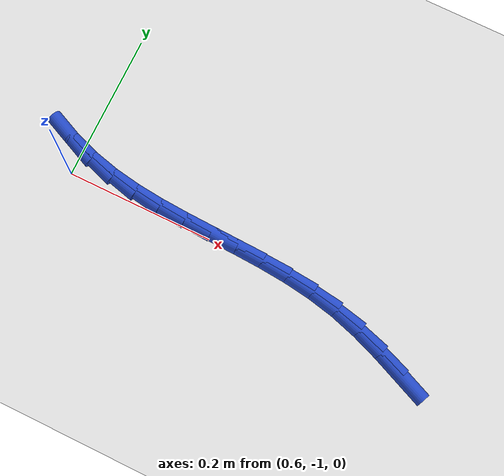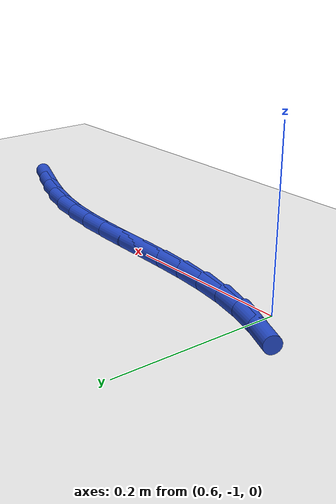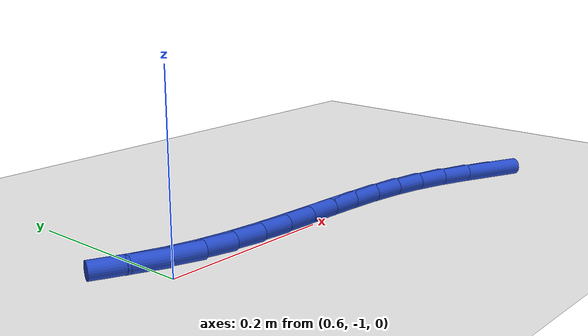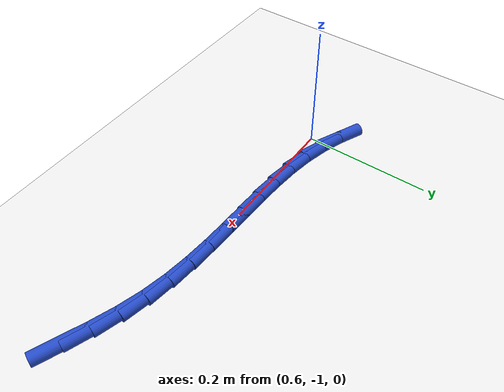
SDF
<sdf version="1.6">
 <world name="default">
  <model name="ground_plane">
   <static>1</static>
   <link name="link">
    <collision name="collision">
     <geometry><plane><normal>0 0 1</normal><size>100 100</size></plane></geometry>
     <surface><friction><ode><mu>100</mu><mu2>50</mu2></ode></friction></surface>
    </collision>
    <visual name="visual">
     <cast_shadows>0</cast_shadows>
     <geometry><plane><normal>0 0 1</normal><size>100 100</size></plane></geometry>
     <material>
      <script><uri>file://media/materials/scripts/gazebo.material</uri><name>Gazebo/WhiteGlow</name></script>
     </material>
    </visual>
   </link>
  </model>
  <model name="line">
   <link name="link_135">
    <pose>1.0943124483751947 -1.0521221810499186 0.01 0 1.57 -0.4006295641597007</pose>
    <collision name="collision">
     <geometry><cylinder><radius>0.01</radius><length>0.08</length></cylinder></geometry>
    </collision>
    <visual name="visual">
     <material>
      <script><name>Gazebo/Blue</name><uri>file://media/materials/scripts/gazebo.material</uri></script>
     </material>
     <geometry><cylinder><radius>0.01</radius><length>0.08</length></cylinder></geometry>
    </visual>
   </link>
   <link name="link_136">
    <pose>1.0587154437186466 -1.03704558525214 0.01 0 1.57 -0.3577651956688518</pose>
    <collision name="collision">
     <geometry><cylinder><radius>0.01</radius><length>0.08</length></cylinder></geometry>
    </collision>
    <visual name="visual">
     <material>
      <script><name>Gazebo/Blue</name><uri>file://media/materials/scripts/gazebo.material</uri></script>
     </material>
     <geometry><cylinder><radius>0.01</radius><length>0.08</length></cylinder></geometry>
    </visual>
   </link>
   <link name="link_137">
    <pose>1.022712836254076 -1.0235858821953256 0.01 0 1.57 -0.29202752304588614</pose>
    <collision name="collision">
     <geometry><cylinder><radius>0.01</radius><length>0.08</length></cylinder></geometry>
    </collision>
    <visual name="visual">
     <material>
      <script><name>Gazebo/Blue</name><uri>file://media/materials/scripts/gazebo.material</uri></script>
     </material>
     <geometry><cylinder><radius>0.01</radius><length>0.08</length></cylinder></geometry>
    </visual>
   </link>
   <link name="link_138">
    <pose>0.9862007171766097 -1.0126095286046126 0.01 0 1.57 -0.20892534083363928</pose>
    <collision name="collision">
     <geometry><cylinder><radius>0.01</radius><length>0.08</length></cylinder></geometry>
    </collision>
    <visual name="visual">
     <material>
      <script><name>Gazebo/Blue</name><uri>file://media/materials/scripts/gazebo.material</uri></script>
     </material>
     <geometry><cylinder><radius>0.01</radius><length>0.08</length></cylinder></geometry>
    </visual>
   </link>
   <link name="link_139">
    <pose>0.9491165771174597 -1.0047469781319385 0.01 0 1.57 -0.13666586955304452</pose>
    <collision name="collision">
     <geometry><cylinder><radius>0.01</radius><length>0.08</length></cylinder></geometry>
    </collision>
    <visual name="visual">
     <material>
      <script><name>Gazebo/Blue</name><uri>file://media/materials/scripts/gazebo.material</uri></script>
     </material>
     <geometry><cylinder><radius>0.01</radius><length>0.08</length></cylinder></geometry>
    </visual>
   </link>
   <link name="link_140">
    <pose>0.9115809946157856 -0.9995849670982213 0.01 0 1.57 -0.08345236203246512</pose>
    <collision name="collision">
     <geometry><cylinder><radius>0.01</radius><length>0.08</length></cylinder></geometry>
    </collision>
    <visual name="visual">
     <material>
      <script><name>Gazebo/Blue</name><uri>file://media/materials/scripts/gazebo.material</uri></script>
     </material>
     <geometry><cylinder><radius>0.01</radius><length>0.08</length></cylinder></geometry>
    </visual>
   </link>
   <link name="link_141">
    <pose>0.8737651448902847 -0.9964217986235205 0.01 0 1.57 -0.04916366091935475</pose>
    <collision name="collision">
     <geometry><cylinder><radius>0.01</radius><length>0.08</length></cylinder></geometry>
    </collision>
    <visual name="visual">
     <material>
      <script><name>Gazebo/Blue</name><uri>file://media/materials/scripts/gazebo.material</uri></script>
     </material>
     <geometry><cylinder><radius>0.01</radius><length>0.08</length></cylinder></geometry>
    </visual>
   </link>
   <link name="link_142">
    <pose>0.8358402048750789 -0.9945557660488891 0.01 0 1.57 -0.03354545636065951</pose>
    <collision name="collision">
     <geometry><cylinder><radius>0.01</radius><length>0.08</length></cylinder></geometry>
    </collision>
    <visual name="visual">
     <material>
      <script><name>Gazebo/Blue</name><uri>file://media/materials/scripts/gazebo.material</uri></script>
     </material>
     <geometry><cylinder><radius>0.01</radius><length>0.08</length></cylinder></geometry>
    </visual>
   </link>
   <link name="link_143">
    <pose>0.7979773515042918 -0.9932851627153789 0.01 0 1.57 -0.03657405702943518</pose>
    <collision name="collision">
     <geometry><cylinder><radius>0.01</radius><length>0.08</length></cylinder></geometry>
    </collision>
    <visual name="visual">
     <material>
      <script><name>Gazebo/Blue</name><uri>file://media/materials/scripts/gazebo.material</uri></script>
     </material>
     <geometry><cylinder><radius>0.01</radius><length>0.08</length></cylinder></geometry>
    </visual>
   </link>
   <link name="link_144">
    <pose>0.7603477617120448 -0.9919082819640422 0.01 0 1.57 -0.05862598713943233</pose>
    <collision name="collision">
     <geometry><cylinder><radius>0.01</radius><length>0.08</length></cylinder></geometry>
    </collision>
    <visual name="visual">
     <material>
      <script><name>Gazebo/Blue</name><uri>file://media/materials/scripts/gazebo.material</uri></script>
     </material>
     <geometry><cylinder><radius>0.01</radius><length>0.08</length></cylinder></geometry>
    </visual>
   </link>
   <link name="link_145">
    <pose>0.7231226124324599 -0.9897234171359316 0.01 0 1.57 -0.10046830629940749</pose>
    <collision name="collision">
     <geometry><cylinder><radius>0.01</radius><length>0.08</length></cylinder></geometry>
    </collision>
    <visual name="visual">
     <material>
      <script><name>Gazebo/Blue</name><uri>file://media/materials/scripts/gazebo.material</uri></script>
     </material>
     <geometry><cylinder><radius>0.01</radius><length>0.08</length></cylinder></geometry>
    </visual>
   </link>
   <link name="link_146">
    <pose>0.6864730805996594 -0.9860288615720987 0.01 0 1.57 -0.16303854732909076</pose>
    <collision name="collision">
     <geometry><cylinder><radius>0.01</radius><length>0.08</length></cylinder></geometry>
    </collision>
    <visual name="visual">
     <material>
      <script><name>Gazebo/Blue</name><uri>file://media/materials/scripts/gazebo.material</uri></script>
     </material>
     <geometry><cylinder><radius>0.01</radius><length>0.08</length></cylinder></geometry>
    </visual>
   </link>
   <link name="link_147">
    <pose>0.6505703431477657 -0.9801229086135967 0.01 0 1.57 -0.24649397974874646</pose>
    <collision name="collision">
     <geometry><cylinder><radius>0.01</radius><length>0.08</length></cylinder></geometry>
    </collision>
    <visual name="visual">
     <material>
      <script><name>Gazebo/Blue</name><uri>file://media/materials/scripts/gazebo.material</uri></script>
     </material>
     <geometry><cylinder><radius>0.01</radius><length>0.08</length></cylinder></geometry>
    </visual>
   </link>
   <link name="link_148">
    <pose>0.6155823576380651 -0.9713195593516641 0.01 0 1.57 -0.3382126608211745</pose>
    <collision name="collision">
     <geometry><cylinder><radius>0.01</radius><length>0.08</length></cylinder></geometry>
    </collision>
    <visual name="visual">
     <material>
      <script><name>Gazebo/Blue</name><uri>file://media/materials/scripts/gazebo.material</uri></script>
     </material>
     <geometry><cylinder><radius>0.01</radius><length>0.08</length></cylinder></geometry>
    </visual>
   </link>
   <link name="link_149">
    <pose>0.5815888861848726 -0.959363132246708 0.01 0 1.57 -0.423744989647632</pose>
    <collision name="collision">
     <geometry><cylinder><radius>0.01</radius><length>0.08</length></cylinder></geometry>
    </collision>
    <visual name="visual">
     <material>
      <script><name>Gazebo/Blue</name><uri>file://media/materials/scripts/gazebo.material</uri></script>
     </material>
     <geometry><cylinder><radius>0.01</radius><length>0.08</length></cylinder></geometry>
    </visual>
   </link>
  </model>
 </world>
</sdf>
